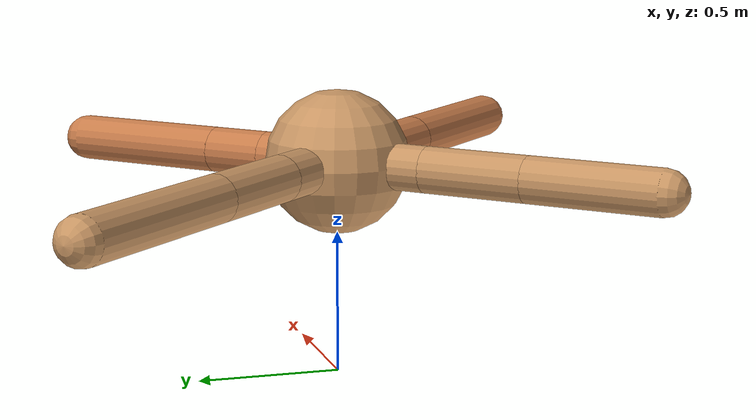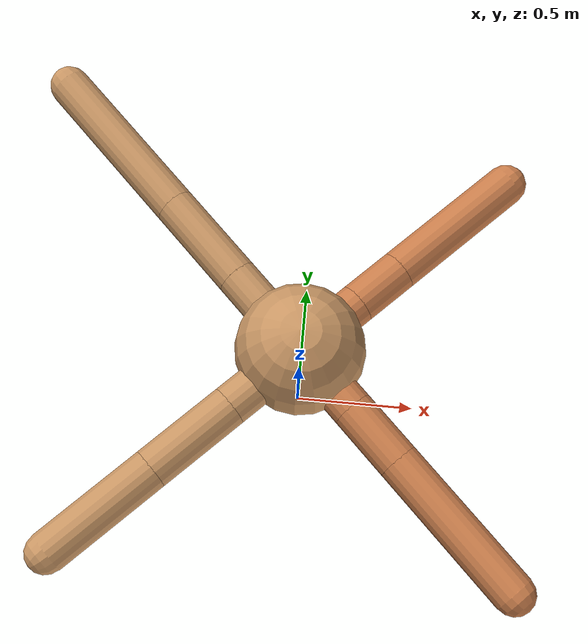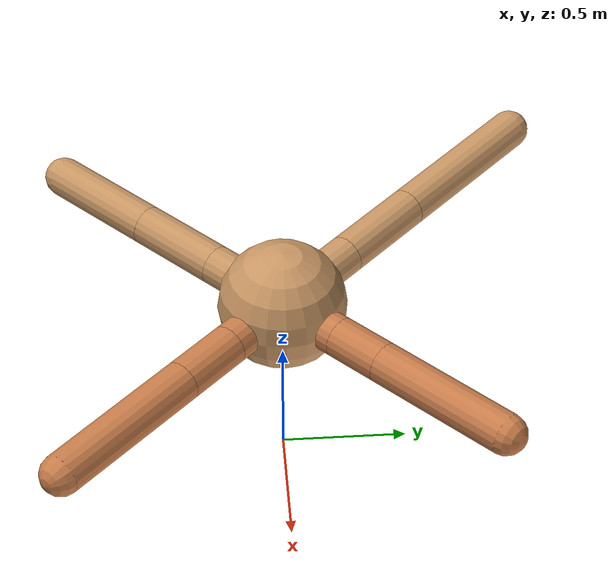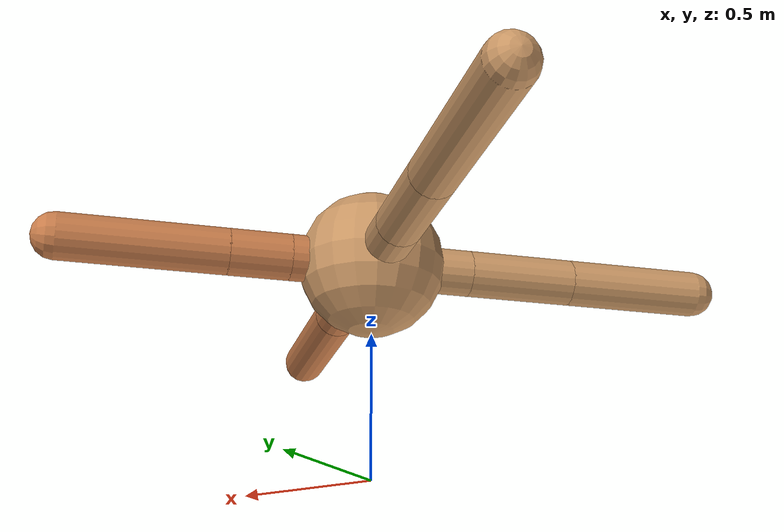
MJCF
<mujoco model="ant">
  <compiler angle="degree" coordinate="local" inertiafromgeom="true" />
  <option integrator="RK4" timestep="0.01" />
  <custom>
    <numeric data="0.0 0.0 0.55 1.0 0.0 0.0 0.0 0.0 1.0 0.0 -1.0 0.0 -1.0 0.0 1.0" name="init_qpos" />
  </custom>
  <default>
    <joint armature="1" damping="1" limited="true" />
    <geom conaffinity="0" condim="3" density="5.0" friction="1.5 0.1 0.1" margin="0.01" rgba="0.8 0.6 0.4 1" />
  </default>
  <worldbody>
    <body name="torso" pos="0 0 0.75">
      <geom name="torso_geom" pos="0 0 0" size="0.25" type="sphere" />

      <body name="front_left_leg" pos="0 0 0">
        <geom fromto="0.0 0.0 0.0 0.20137205884411558 0.20137205884411558 0.0" name="aux_1_geom" size="0.08" type="capsule" rgba=".8 .5 .3 1" />
        <body name="aux_1" pos="0.20137205884411558 0.20137205884411558 0.0">
          <joint axis="0 0 1" name="hip_1" pos="0.0 0.0 0.0" range="-40 40" type="hinge" />
          <geom fromto="0.0 0.0 0.0 0.1486001990550653 0.1486001990550653 0.0" name="left_leg_geom" size="0.08" type="capsule" rgba=".8 .5 .3 1" />
          <body pos="0.1486001990550653 0.1486001990550653 0.0" name="front_left_foot">
            <joint axis="-1 1 0" name="ankle_1" pos="0.0 0.0 0.0" range="30 100" type="hinge" />
            <geom fromto="0.0 0.0 0.0 0.4001368609009158 0.4001368609009158 0.0" name="left_ankle_geom" size="0.08" type="capsule" rgba=".8 .5 .3 1" />
          </body>
        </body>
      </body>
      <body name="front_right_leg" pos="0 0 0">
        <geom fromto="0.0 0.0 0.0 -0.26750980850142464 0.26750980850142464 0.0" name="aux_2_geom" size="0.08" type="capsule" />
        <body name="aux_2" pos="-0.26750980850142464 0.26750980850142464 0.0">
          <joint axis="0 0 1" name="hip_2" pos="0.0 0.0 0.0" range="-40 40" type="hinge" />
          <geom fromto="0.0 0.0 0.0 -0.2725142201452125 0.2725142201452125 0.0" name="right_leg_geom" size="0.08" type="capsule" />
          <body pos="-0.2725142201452125 0.2725142201452125 0.0" name="front_right_foot">
            <joint axis="1 1 0" name="ankle_2" pos="0.0 0.0 0.0" range="-100 -30" type="hinge" />
            <geom fromto="0.0 0.0 0.0 -0.4885607489629548 0.4885607489629548 0.0" name="right_ankle_geom" size="0.08" type="capsule" />
          </body>
        </body>
      </body>
      <body name="left_back_leg" pos="0 0 0">
        <geom fromto="0.0 0.0 0.0 -0.2435720629221314 -0.2435720629221314 0.0" name="aux_3_geom" size="0.08" type="capsule" />
        <body name="aux_3" pos="-0.2435720629221314 -0.2435720629221314 0.0">
          <joint axis="0 0 1" name="hip_3" pos="0.0 0.0 0.0" range="-40 40" type="hinge" />
          <geom fromto="0.0 0.0 0.0 -0.2612578190548779 -0.2612578190548779 0.0" name="back_leg_geom" size="0.08" type="capsule" />
          <body pos="-0.2612578190548779 -0.2612578190548779 0.0" name="left_back_foot">
            <joint axis="-1 1 0" name="ankle_3" pos="0.0 0.0 0.0" range="-100 -30" type="hinge" />
            <geom fromto="0.0 0.0 0.0 -0.3353561684226178 -0.3353561684226178 0.0" name="third_ankle_geom" size="0.08" type="capsule" />
          </body>
        </body>
      </body>
      <body name="right_back_leg" pos="0 0 0">
        <geom fromto="0.0 0.0 0.0 0.21390692193263738 -0.21390692193263738 0.0" name="aux_4_geom" size="0.08" type="capsule" rgba=".8 .5 .3 1" />
        <body name="aux_4" pos="0.21390692193263738 -0.21390692193263738 0.0">
          <joint axis="0 0 1" name="hip_4" pos="0.0 0.0 0.0" range="-40 40" type="hinge" />
          <geom fromto="0.0 0.0 0.0 0.18108183426327107 -0.18108183426327107 0.0" name="rightback_leg_geom" size="0.08" type="capsule" rgba=".8 .5 .3 1" />
          <body pos="0.18108183426327107 -0.18108183426327107 0.0" name="right_back_foot">
            <joint axis="1 1 0" name="ankle_4" pos="0.0 0.0 0.0" range="30 100" type="hinge" />
            <geom fromto="0.0 0.0 0.0 0.43772982885318146 -0.43772982885318146 0.0" name="fourth_ankle_geom" size="0.08" type="capsule" rgba=".8 .5 .3 1" />
          </body>
        </body>
      </body>
    </body>
  </worldbody>
  <actuator>
    <motor ctrllimited="true" ctrlrange="-1.0 1.0" joint="hip_4" gear="150" />
    <motor ctrllimited="true" ctrlrange="-1.0 1.0" joint="ankle_4" gear="150" />
    <motor ctrllimited="true" ctrlrange="-1.0 1.0" joint="hip_1" gear="150" />
    <motor ctrllimited="true" ctrlrange="-1.0 1.0" joint="ankle_1" gear="150" />
    <motor ctrllimited="true" ctrlrange="-1.0 1.0" joint="hip_2" gear="150" />
    <motor ctrllimited="true" ctrlrange="-1.0 1.0" joint="ankle_2" gear="150" />
    <motor ctrllimited="true" ctrlrange="-1.0 1.0" joint="hip_3" gear="150" />
    <motor ctrllimited="true" ctrlrange="-1.0 1.0" joint="ankle_3" gear="150" />
  </actuator>
</mujoco>
